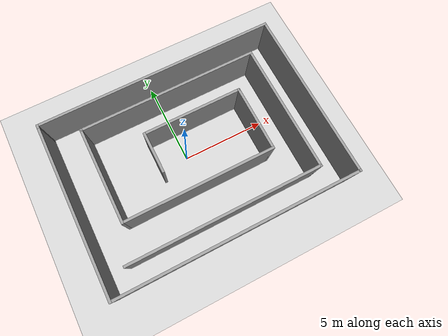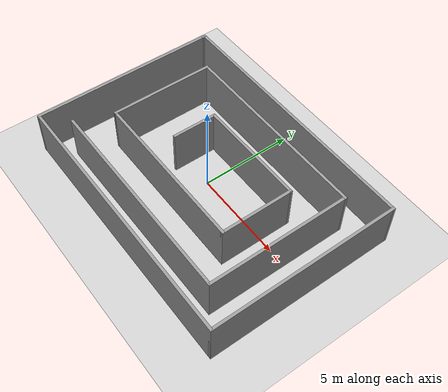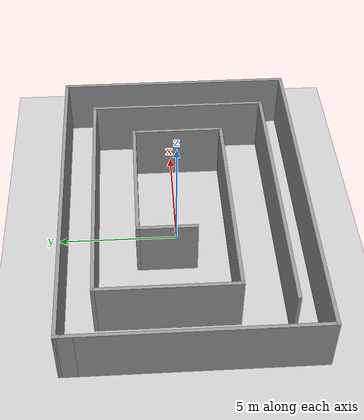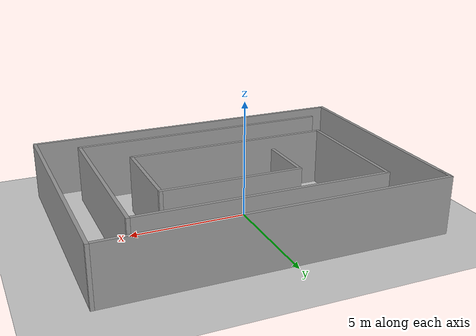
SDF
<sdf version="1.7">
 <world name="default">
  <light name="sun" type="directional">
   <pose>0 0 10 0 -0 0</pose>
   <diffuse>0.8 0.8 0.8 1</diffuse>
   <specular>0.2 0.2 0.2 1</specular>
   <attenuation>
    <range>1000</range>
    <constant>0.9</constant>
    <linear>0.01</linear>
    <quadratic>0.001</quadratic>
   </attenuation>
   <direction>-0.5 0.1 -0.9</direction>
   <spot><inner_angle>0</inner_angle><outer_angle>0</outer_angle><falloff>0</falloff></spot>
  </light>
  <model name="ground_plane">
   <static>1</static>
   <link name="link">
    <collision name="collision">
     <geometry><plane><normal>0 0 1</normal><size>100 100</size></plane></geometry>
     <surface>
      <contact><collide_bitmask>65535</collide_bitmask></contact>
      <friction><ode><mu>100</mu><mu2>50</mu2></ode></friction>
     </surface>
    </collision>
    <visual name="visual">
     <cast_shadows>0</cast_shadows>
     <geometry><plane><normal>0 0 1</normal><size>100 100</size></plane></geometry>
     <material>
      <script><uri>file://media/materials/scripts/gazebo.material</uri><name>Gazebo/Grey</name></script>
     </material>
    </visual>
   </link>
  </model>
  <gravity>0 0 -9.8</gravity>
  <magnetic_field>6e-06 2.3e-05 -4.2e-05</magnetic_field>
  <atmosphere type="adiabatic"/>
  <physics type="ode">
   <max_step_size>0.001</max_step_size>
   <real_time_factor>1</real_time_factor>
   <real_time_update_rate>1000</real_time_update_rate>
  </physics>
  <scene><ambient>0.4 0.4 0.4 1</ambient><background>0.7 0.7 0.7 1</background><shadows>1</shadows></scene>
  <spherical_coordinates>
   <surface_model>EARTH_WGS84</surface_model>
   <latitude_deg>0</latitude_deg>
   <longitude_deg>0</longitude_deg>
   <elevation>0</elevation>
   <heading_deg>0</heading_deg>
  </spherical_coordinates>
  <model name="car_world">
   <pose>0.456834 -0.331583 0 0 -0 0</pose>
   <link name="Wall_10">
    <collision name="Wall_10_Collision">
     <geometry><box><size>10.25 0.15 2.5</size></box></geometry>
     <pose>0 0 1.25 0 -0 0</pose>
    </collision>
    <visual name="Wall_10_Visual">
     <pose>0 0 1.25 0 -0 0</pose>
     <geometry><box><size>10.25 0.15 2.5</size></box></geometry>
     <material>
      <script><uri>file://media/materials/scripts/gazebo.material</uri><name>Gazebo/Grey</name></script>
      <ambient>1 1 1 1</ambient>
     </material>
     <meta><layer>0</layer></meta>
    </visual>
    <pose>7.175 0 0 0 -0 1.5708</pose>
   </link>
   <link name="Wall_11">
    <collision name="Wall_11_Collision">
     <geometry><box><size>14.5 0.15 2.5</size></box></geometry>
     <pose>0 0 1.25 0 -0 0</pose>
    </collision>
    <visual name="Wall_11_Visual">
     <pose>0 0 1.25 0 -0 0</pose>
     <geometry><box><size>14.5 0.15 2.5</size></box></geometry>
     <material>
      <script><uri>file://media/materials/scripts/gazebo.material</uri><name>Gazebo/Grey</name></script>
      <ambient>1 1 1 1</ambient>
     </material>
     <meta><layer>0</layer></meta>
    </visual>
    <pose>-0 5.05 0 0 -0 3.14159</pose>
   </link>
   <link name="Wall_12">
    <collision name="Wall_12_Collision">
     <geometry><box><size>0.75 0.15 2.5</size></box></geometry>
     <pose>0 0 1.25 0 -0 0</pose>
    </collision>
    <visual name="Wall_12_Visual">
     <pose>0 0 1.25 0 -0 0</pose>
     <geometry><box><size>0.75 0.15 2.5</size></box></geometry>
     <material>
      <script><uri>file://media/materials/scripts/gazebo.material</uri><name>Gazebo/Grey</name></script>
      <ambient>1 1 1 1</ambient>
     </material>
     <meta><layer>0</layer></meta>
    </visual>
    <pose>-7.175 4.75 0 0 -0 -1.5708</pose>
   </link>
   <link name="Wall_14">
    <collision name="Wall_14_Collision">
     <geometry><box><size>11.5 0.15 2.5</size></box></geometry>
     <pose>0 0 1.25 0 -0 0</pose>
    </collision>
    <visual name="Wall_14_Visual">
     <pose>0 0 1.25 0 -0 0</pose>
     <geometry><box><size>11.5 0.15 2.5</size></box></geometry>
     <material>
      <script><uri>file://media/materials/scripts/gazebo.material</uri><name>Gazebo/Grey</name></script>
      <ambient>1 1 1 1</ambient>
     </material>
     <meta><layer>0</layer></meta>
    </visual>
    <pose>-0.21521 -3.87233 0 0 -0 0</pose>
   </link>
   <link name="Wall_15">
    <collision name="Wall_15_Collision">
     <geometry><box><size>7.75 0.15 2.5</size></box></geometry>
     <pose>0 0 1.25 0 -0 0</pose>
    </collision>
    <visual name="Wall_15_Visual">
     <pose>0 0 1.25 0 -0 0</pose>
     <geometry><box><size>7.75 0.15 2.5</size></box></geometry>
     <material>
      <script><uri>file://media/materials/scripts/gazebo.material</uri><name>Gazebo/Grey</name></script>
      <ambient>1 1 1 1</ambient>
     </material>
     <meta><layer>0</layer></meta>
    </visual>
    <pose>5.45979 -0.07233 0 0 -0 1.5708</pose>
   </link>
   <link name="Wall_16">
    <collision name="Wall_16_Collision">
     <geometry><box><size>10.75 0.15 2.5</size></box></geometry>
     <pose>0 0 1.25 0 -0 0</pose>
    </collision>
    <visual name="Wall_16_Visual">
     <pose>0 0 1.25 0 -0 0</pose>
     <geometry><box><size>10.75 0.15 2.5</size></box></geometry>
     <material>
      <script><uri>file://media/materials/scripts/gazebo.material</uri><name>Gazebo/Grey</name></script>
      <ambient>1 1 1 1</ambient>
     </material>
     <meta><layer>0</layer></meta>
    </visual>
    <pose>0.15979 3.72767 0 0 -0 3.14159</pose>
   </link>
   <link name="Wall_17">
    <collision name="Wall_17_Collision">
     <geometry><box><size>5.75 0.15 2.5</size></box></geometry>
     <pose>0 0 1.25 0 -0 0</pose>
    </collision>
    <visual name="Wall_17_Visual">
     <pose>0 0 1.25 0 -0 0</pose>
     <geometry><box><size>5.75 0.15 2.5</size></box></geometry>
     <material>
      <script><uri>file://media/materials/scripts/gazebo.material</uri><name>Gazebo/Grey</name></script>
      <ambient>1 1 1 1</ambient>
     </material>
     <meta><layer>0</layer></meta>
    </visual>
    <pose>-5.14021 0.92767 0 0 -0 -1.5708</pose>
   </link>
   <link name="Wall_18">
    <collision name="Wall_18_Collision">
     <geometry><box><size>9 0.15 2.5</size></box></geometry>
     <pose>0 0 1.25 0 -0 0</pose>
    </collision>
    <visual name="Wall_18_Visual">
     <pose>0 0 1.25 0 -0 0</pose>
     <geometry><box><size>9 0.15 2.5</size></box></geometry>
     <material>
      <script><uri>file://media/materials/scripts/gazebo.material</uri><name>Gazebo/Grey</name></script>
      <ambient>1 1 1 1</ambient>
     </material>
     <meta><layer>0</layer></meta>
    </visual>
    <pose>-0.71521 -1.87233 0 0 -0 0</pose>
   </link>
   <link name="Wall_19">
    <collision name="Wall_19_Collision">
     <geometry><box><size>4 0.15 2.5</size></box></geometry>
     <pose>0 0 1.25 0 -0 0</pose>
    </collision>
    <visual name="Wall_19_Visual">
     <pose>0 0 1.25 0 -0 0</pose>
     <geometry><box><size>4 0.15 2.5</size></box></geometry>
     <material>
      <script><uri>file://media/materials/scripts/gazebo.material</uri><name>Gazebo/Grey</name></script>
      <ambient>1 1 1 1</ambient>
     </material>
     <meta><layer>0</layer></meta>
    </visual>
    <pose>3.70979 0.05267 0 0 -0 1.5708</pose>
   </link>
   <link name="Wall_20">
    <collision name="Wall_20_Collision">
     <geometry><box><size>6 0.15 2.5</size></box></geometry>
     <pose>0 0 1.25 0 -0 0</pose>
    </collision>
    <visual name="Wall_20_Visual">
     <pose>0 0 1.25 0 -0 0</pose>
     <geometry><box><size>6 0.15 2.5</size></box></geometry>
     <material>
      <script><uri>file://media/materials/scripts/gazebo.material</uri><name>Gazebo/Grey</name></script>
      <ambient>1 1 1 1</ambient>
     </material>
     <meta><layer>0</layer></meta>
    </visual>
    <pose>0.78479 1.97767 0 0 -0 3.14159</pose>
   </link>
   <link name="Wall_21">
    <collision name="Wall_21_Collision">
     <geometry><box><size>2.5 0.15 2.5</size></box></geometry>
     <pose>0 0 1.25 0 -0 0</pose>
    </collision>
    <visual name="Wall_21_Visual">
     <pose>0 0 1.25 0 -0 0</pose>
     <geometry><box><size>2.5 0.15 2.5</size></box></geometry>
     <material>
      <script><uri>file://media/materials/scripts/gazebo.material</uri><name>Gazebo/Grey</name></script>
      <ambient>1 1 1 1</ambient>
     </material>
     <meta><layer>0</layer></meta>
    </visual>
    <pose>-2.14021 0.80267 0 0 -0 -1.5708</pose>
   </link>
   <link name="Wall_8">
    <collision name="Wall_8_Collision">
     <geometry><box><size>10 0.15 2.5</size></box></geometry>
     <pose>0 0 1.25 0 -0 0</pose>
    </collision>
    <visual name="Wall_8_Visual">
     <pose>0 0 1.25 0 -0 0</pose>
     <geometry><box><size>10 0.15 2.5</size></box></geometry>
     <material>
      <script><uri>file://media/materials/scripts/gazebo.material</uri><name>Gazebo/Grey</name></script>
      <ambient>1 1 1 1</ambient>
     </material>
     <meta><layer>0</layer></meta>
    </visual>
    <pose>-7.175 -0.125 0 0 -0 -1.5708</pose>
   </link>
   <link name="Wall_9">
    <collision name="Wall_9_Collision">
     <geometry><box><size>14.5 0.15 2.5</size></box></geometry>
     <pose>0 0 1.25 0 -0 0</pose>
    </collision>
    <visual name="Wall_9_Visual">
     <pose>0 0 1.25 0 -0 0</pose>
     <geometry><box><size>14.5 0.15 2.5</size></box></geometry>
     <material>
      <script><uri>file://media/materials/scripts/gazebo.material</uri><name>Gazebo/Grey</name></script>
      <ambient>1 1 1 1</ambient>
     </material>
     <meta><layer>0</layer></meta>
    </visual>
    <pose>-0 -5.05 0 0 -0 0</pose>
   </link>
   <static>1</static>
  </model>
 </world>
</sdf>
